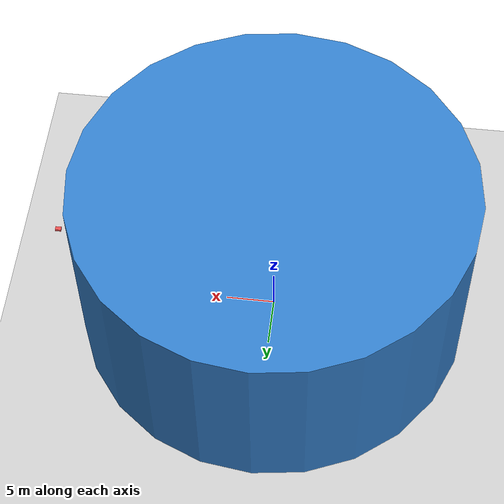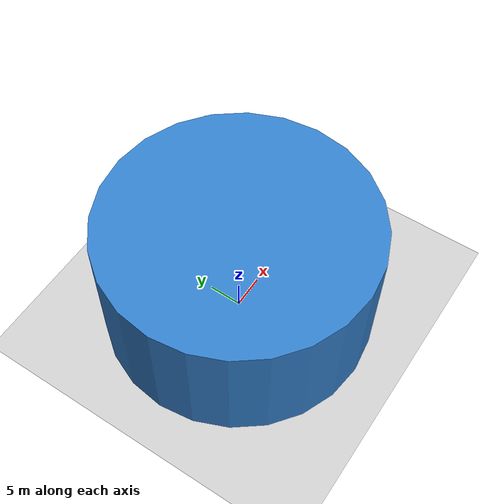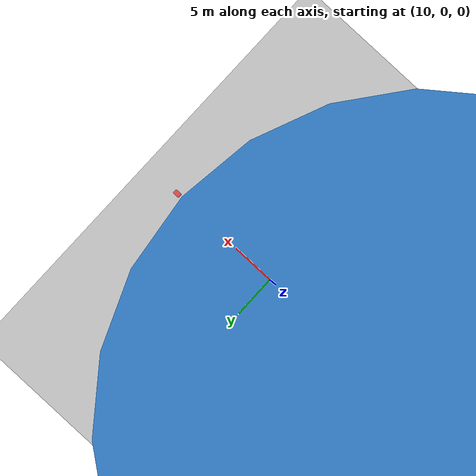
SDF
<?xml version="1.0"?>
<sdf version="1.10">
  <world name="rov_wall">

    <!-- 基础系统 -->
    <physics name="1ms" type="ignored">
      <max_step_size>0.002</max_step_size>
      <real_time_factor>1.0</real_time_factor>
    </physics>

    <plugin filename="gz-sim-physics-system"
            name="gz::sim::systems::Physics"/>
    <plugin filename="gz-sim-user-commands-system"
            name="gz::sim::systems::UserCommands"/>
    <plugin filename="gz-sim-scene-broadcaster-system"
            name="gz::sim::systems::SceneBroadcaster"/>
    <plugin filename="gz-sim-sensors-system"
            name="gz::sim::systems::Sensors">
      <render_engine>ogre2</render_engine>
    </plugin>

    <!-- 光照 -->
    <light name="sun" type="directional">
      <pose>0 0 20 0 0 0</pose>
      <diffuse>0.8 0.8 0.8 1</diffuse>
      <specular>0.2 0.2 0.2 1</specular>
      <direction>-0.5 0.1 -1</direction>
    </light>

    <!-- 地面 -->
    <model name="ground">
      <static>true</static>
      <link name="ground_link">
        <collision name="ground_collision">
          <geometry>
            <plane>
              <normal>0 0 1</normal>
              <size>200 200</size>
            </plane>
          </geometry>
        </collision>
        <visual name="ground_visual">
          <geometry>
            <plane>
              <normal>0 0 1</normal>
              <size>200 200</size>
            </plane>
          </geometry>
        </visual>
      </link>
    </model>

    <!-- 巨大圆柱：半径20m，高度20m，中心在 z=10m -->
    <model name="big_cylinder">
      <static>true</static>
      <pose>0 0 10 0 0 0</pose>
      <link name="cylinder_link">
        <collision name="cylinder_collision">
          <geometry>
            <cylinder>
              <radius>20.0</radius>
              <length>20.0</length>
            </cylinder>
          </geometry>
        </collision>
        <visual name="cylinder_visual">
          <geometry>
            <cylinder>
              <radius>20.0</radius>
              <length>20.0</length>
            </cylinder>
          </geometry>
          <material>
            <ambient>0.2 0.5 0.8 1</ambient>
            <diffuse>0.2 0.5 0.8 1</diffuse>
            <specular>0.1 0.1 0.1 1</specular>
          </material>
        </visual>
      </link>
    </model>

    <!-- 简化 ROV -->
    <!-- 放在圆柱外侧 +x 方向，距表面 2 m -->
    <!-- 圆柱半径 20 m，因此初始 x = 22 m -->
    <!-- yaw = pi，表示机体前向朝向 -x，也就是正对圆柱 -->
    <model name="rov">
      <pose>22 0 10 0 0 3.141592653589793</pose>

    <frame name="beam1_frame" attached_to="base_link">
      <pose>0.25 0 0 0 -0.615479709  0.785398163</pose>
    </frame>
    <frame name="beam2_frame" attached_to="base_link">
      <pose>0.25 0 0 0  0.615479709  0.785398163</pose>
    </frame>
    <frame name="beam3_frame" attached_to="base_link">
      <pose>0.25 0 0 0  0.615479709 -0.785398163</pose>
    </frame>
    <frame name="beam4_frame" attached_to="base_link">
      <pose>0.25 0 0 0 -0.615479709 -0.785398163</pose>
    </frame>
      <link name="base_link">
        <!-- 先关掉重力，避免没有浮力模型时下沉 -->
        <gravity>false</gravity>

        <inertial>
          <mass>20.0</mass>
          <inertia>
            <ixx>1.0</ixx>
            <iyy>1.0</iyy>
            <izz>1.0</izz>
            <ixy>0.0</ixy>
            <ixz>0.0</ixz>
            <iyz>0.0</iyz>
          </inertia>
        </inertial>

        <collision name="base_collision">
          <geometry>
            <box>
              <size>0.6 0.4 0.25</size>
            </box>
          </geometry>
        </collision>

        <visual name="base_visual">
          <geometry>
            <box>
              <size>0.6 0.4 0.25</size>
            </box>
          </geometry>
          <material>
            <ambient>0.9 0.3 0.3 1</ambient>
            <diffuse>0.9 0.3 0.3 1</diffuse>
            <specular>0.2 0.2 0.2 1</specular>
          </material>
        </visual>

        <!-- beam1 -->
        <sensor name="beam1" type="gpu_lidar">
          <pose relative_to="beam1_frame">0 0 0 0 0 0</pose>
          <topic>/beam1</topic>
          <update_rate>20</update_rate>
          <ray>
            <scan>
              <horizontal>
                <samples>1</samples>
                <resolution>1</resolution>
                <min_angle>0</min_angle>
                <max_angle>0</max_angle>
              </horizontal>
              <vertical>
                <samples>1</samples>
                <resolution>1</resolution>
                <min_angle>0</min_angle>
                <max_angle>0</max_angle>
              </vertical>
            </scan>
            <range>
              <min>0.08</min>
              <max>30.0</max>
              <resolution>0.001</resolution>
            </range>
          </ray>
          <always_on>true</always_on>
          <visualize>true</visualize>
        </sensor>

        <!-- beam2 -->
        <sensor name="beam2" type="gpu_lidar">
          <pose relative_to="beam2_frame">0 0 0 0 0 0</pose>
          <topic>/beam2</topic>
          <update_rate>20</update_rate>
          <ray>
            <scan>
              <horizontal>
                <samples>1</samples>
                <resolution>1</resolution>
                <min_angle>0</min_angle>
                <max_angle>0</max_angle>
              </horizontal>
              <vertical>
                <samples>1</samples>
                <resolution>1</resolution>
                <min_angle>0</min_angle>
                <max_angle>0</max_angle>
              </vertical>
            </scan>
            <range>
              <min>0.08</min>
              <max>30.0</max>
              <resolution>0.001</resolution>
            </range>
          </ray>
          <always_on>true</always_on>
          <visualize>true</visualize>
        </sensor>

        <!-- beam3 -->
        <sensor name="beam3" type="gpu_lidar">
          <pose relative_to="beam3_frame">0 0 0 0 0 0</pose>
          <topic>/beam3</topic>
          <update_rate>20</update_rate>
          <ray>
            <scan>
              <horizontal>
                <samples>1</samples>
                <resolution>1</resolution>
                <min_angle>0</min_angle>
                <max_angle>0</max_angle>
              </horizontal>
              <vertical>
                <samples>1</samples>
                <resolution>1</resolution>
                <min_angle>0</min_angle>
                <max_angle>0</max_angle>
              </vertical>
            </scan>
            <range>
              <min>0.08</min>
              <max>30.0</max>
              <resolution>0.001</resolution>
            </range>
          </ray>
          <always_on>true</always_on>
          <visualize>true</visualize>
        </sensor>

        <!-- beam4 -->
        <sensor name="beam4" type="gpu_lidar">
          <pose relative_to="beam4_frame">0 0 0 0 0 0</pose>
          <topic>/beam4</topic>
          <update_rate>20</update_rate>
          <ray>
            <scan>
              <horizontal>
                <samples>1</samples>
                <resolution>1</resolution>
                <min_angle>0</min_angle>
                <max_angle>0</max_angle>
              </horizontal>
              <vertical>
                <samples>1</samples>
                <resolution>1</resolution>
                <min_angle>0</min_angle>
                <max_angle>0</max_angle>
              </vertical>
            </scan>
            <range>
              <min>0.08</min>
              <max>30.0</max>
              <resolution>0.001</resolution>
            </range>
          </ray>
          <always_on>true</always_on>
          <visualize>true</visualize>
        </sensor>
      </link>

      <!-- 直接按机体速度控制 -->
      <plugin filename="gz-sim-velocity-control-system"
              name="gz::sim::systems::VelocityControl">
        <topic>/cmd_vel</topic>
      </plugin>
    </model>

  </world>
</sdf>
